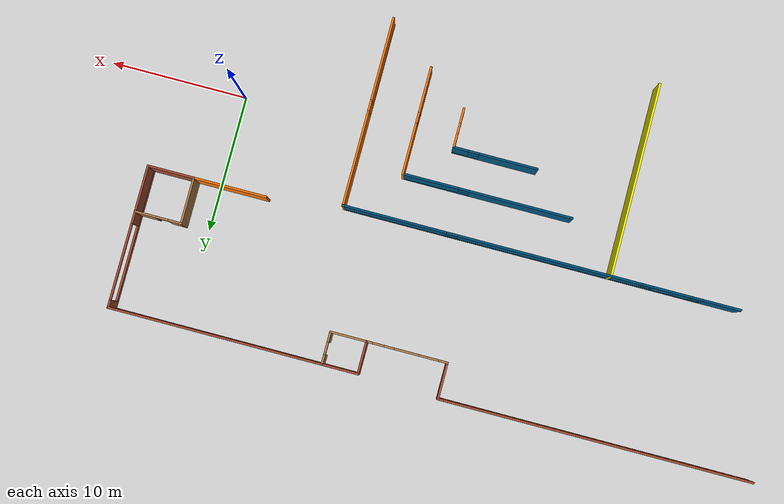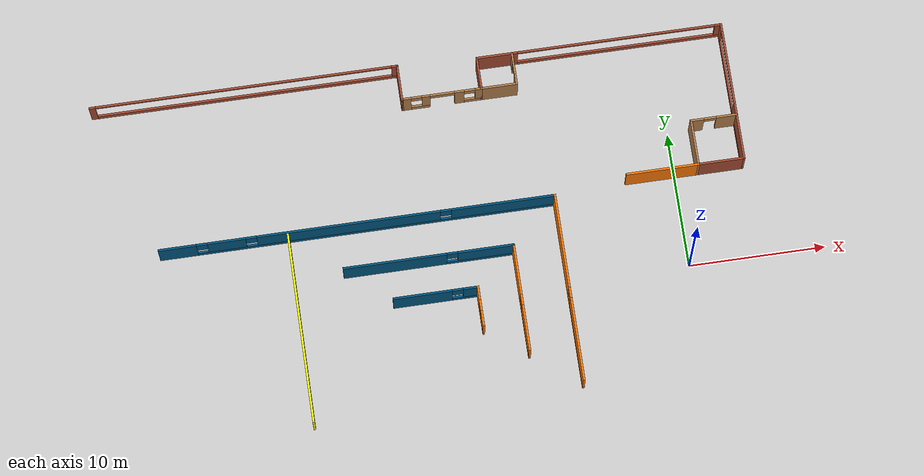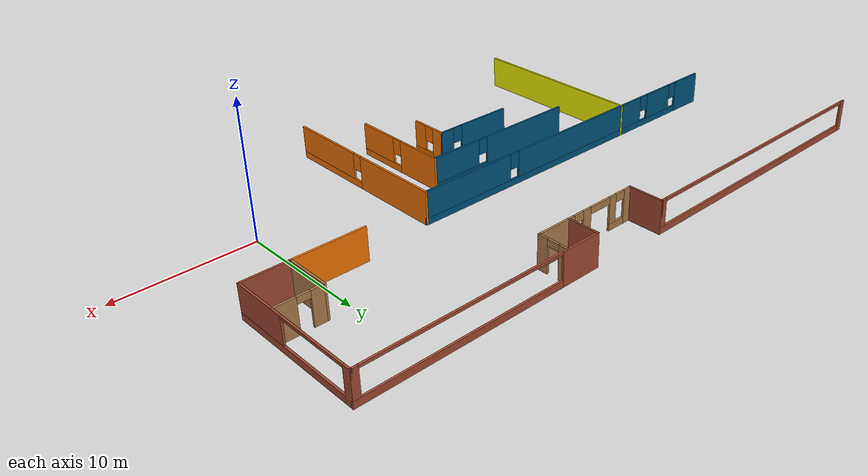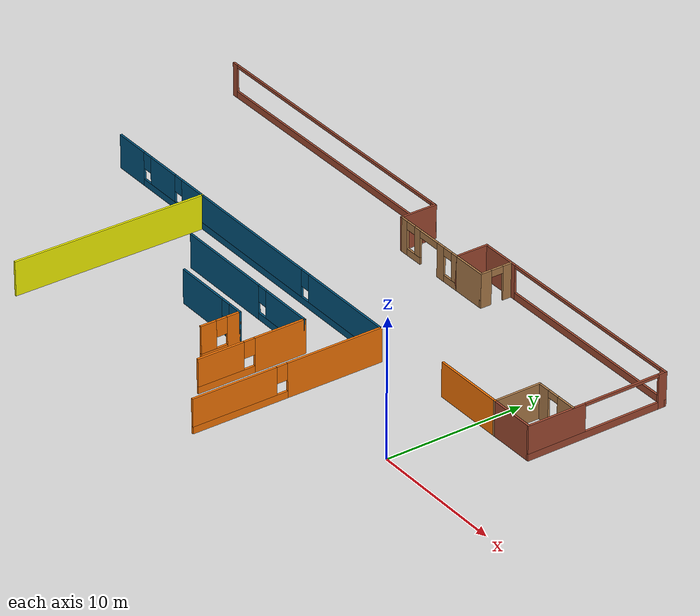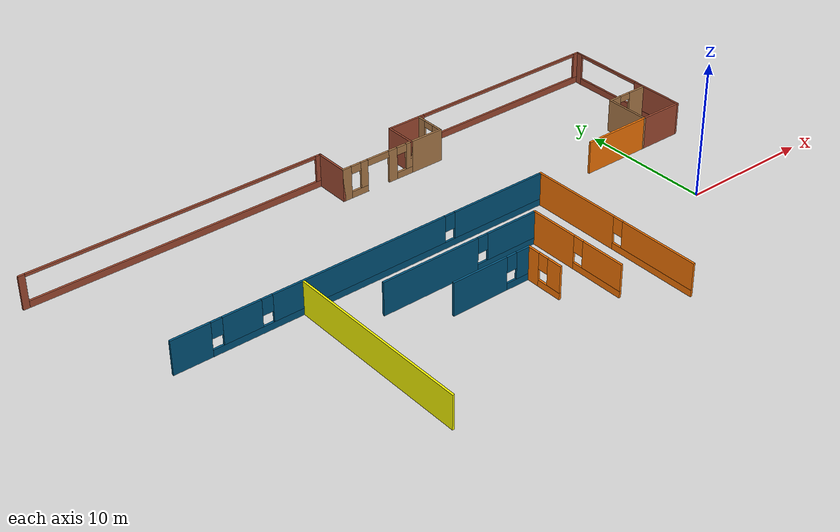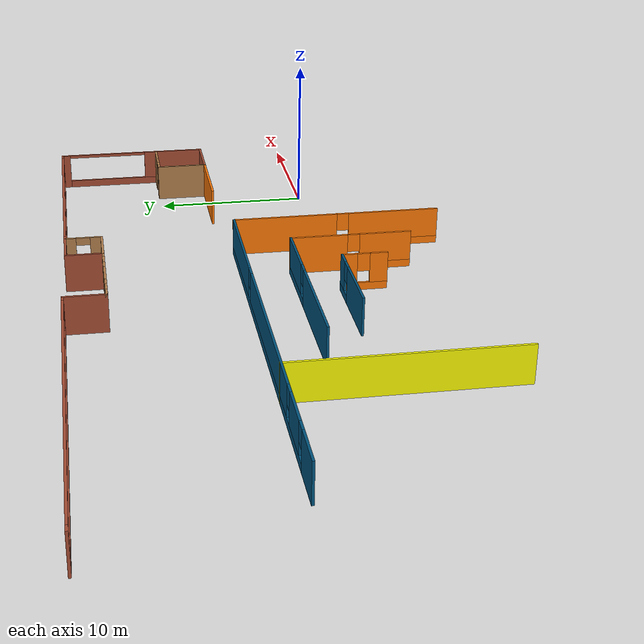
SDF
<sdf version="1.6">
 <model name="spiral_office">
  <pose>-21.9737 -0.990625 0 0 -0 0</pose>
  <link name="Wall_10">
   <pose>-8.28463 18.4006 0 0 -0 0</pose>
   <visual name="Wall_10_Visual_0">
    <pose>-11.142 0 1.25 0 -0 0</pose>
    <geometry><box><size>0.465955 0.15 2.5</size></box></geometry>
    <material>
     <script><uri>file://media/materials/scripts/gazebo.material</uri><name>Gazebo/Bricks</name></script>
     <ambient>1 1 1 1</ambient>
    </material>
    <meta><layer>0</layer></meta>
   </visual>
   <collision name="Wall_10_Collision_0">
    <geometry><box><size>0.465955 0.15 2.5</size></box></geometry>
    <pose>-11.142 0 1.25 0 -0 0</pose>
   </collision>
   <visual name="Wall_10_Visual_1">
    <pose>0.232978 0 0.25 0 -0 0</pose>
    <geometry><box><size>22.284 0.15 0.5</size></box></geometry>
    <material>
     <script><uri>file://media/materials/scripts/gazebo.material</uri><name>Gazebo/Bricks</name></script>
     <ambient>1 1 1 1</ambient>
    </material>
    <meta><layer>0</layer></meta>
   </visual>
   <collision name="Wall_10_Collision_1">
    <geometry><box><size>22.284 0.15 0.5</size></box></geometry>
    <pose>0.232978 0 0.25 0 -0 0</pose>
   </collision>
   <visual name="Wall_10_Visual_2">
    <pose>11.1279 0 1.5 0 -0 0</pose>
    <geometry><box><size>0.494199 0.15 2</size></box></geometry>
    <material>
     <script><uri>file://media/materials/scripts/gazebo.material</uri><name>Gazebo/Bricks</name></script>
     <ambient>1 1 1 1</ambient>
    </material>
    <meta><layer>0</layer></meta>
   </visual>
   <collision name="Wall_10_Collision_2">
    <geometry><box><size>0.494199 0.15 2</size></box></geometry>
    <pose>11.1279 0 1.5 0 -0 0</pose>
   </collision>
   <visual name="Wall_10_Visual_3">
    <pose>-0.014122 0 2.4 0 -0 0</pose>
    <geometry><box><size>21.7898 0.15 0.2</size></box></geometry>
    <material>
     <script><uri>file://media/materials/scripts/gazebo.material</uri><name>Gazebo/Bricks</name></script>
     <ambient>1 1 1 1</ambient>
    </material>
    <meta><layer>0</layer></meta>
   </visual>
   <collision name="Wall_10_Collision_3">
    <geometry><box><size>21.7898 0.15 0.2</size></box></geometry>
    <pose>-0.014122 0 2.4 0 -0 0</pose>
   </collision>
  </link>
  <link name="Wall_11">
   <collision name="Wall_11_Collision">
    <geometry><box><size>2.75 0.15 2.5</size></box></geometry>
    <pose>0 0 1.25 0 -0 0</pose>
   </collision>
   <visual name="Wall_11_Visual">
    <pose>0 0 1.25 0 -0 0</pose>
    <geometry><box><size>2.75 0.15 2.5</size></box></geometry>
    <material>
     <script><uri>file://media/materials/scripts/gazebo.material</uri><name>Gazebo/Bricks</name></script>
     <ambient>1 1 1 1</ambient>
    </material>
    <meta><layer>0</layer></meta>
   </visual>
   <pose>3.01537 17.1006 0 0 0 -1.5708</pose>
  </link>
  <link name="Wall_12">
   <pose>5.94037 15.8006 0 0 -0 0</pose>
   <visual name="Wall_12_Visual_0">
    <pose>-2.63334 0 1.25 0 -0 0</pose>
    <geometry><box><size>0.733327 0.15 2.5</size></box></geometry>
    <material>
     <script><uri>file://media/materials/scripts/gazebo.material</uri><name>Gazebo/Wood</name></script>
     <ambient>1 1 1 1</ambient>
    </material>
    <meta><layer>0</layer></meta>
   </visual>
   <collision name="Wall_12_Collision_0">
    <geometry><box><size>0.733327 0.15 2.5</size></box></geometry>
    <pose>-2.63334 0 1.25 0 -0 0</pose>
   </collision>
   <visual name="Wall_12_Visual_1">
    <pose>1.29307 0 1.25 0 -0 0</pose>
    <geometry><box><size>0.719491 0.15 2.5</size></box></geometry>
    <material>
     <script><uri>file://media/materials/scripts/gazebo.material</uri><name>Gazebo/Wood</name></script>
     <ambient>1 1 1 1</ambient>
    </material>
    <meta><layer>0</layer></meta>
   </visual>
   <collision name="Wall_12_Collision_1">
    <geometry><box><size>0.719491 0.15 2.5</size></box></geometry>
    <pose>1.29307 0 1.25 0 -0 0</pose>
   </collision>
   <visual name="Wall_12_Visual_2">
    <pose>-1.56667 0 0.25 0 -0 0</pose>
    <geometry><box><size>1.4 0.15 0.5</size></box></geometry>
    <material>
     <script><uri>file://media/materials/scripts/gazebo.material</uri><name>Gazebo/Wood</name></script>
     <ambient>1 1 1 1</ambient>
    </material>
    <meta><layer>0</layer></meta>
   </visual>
   <collision name="Wall_12_Collision_2">
    <geometry><box><size>1.4 0.15 0.5</size></box></geometry>
    <pose>-1.56667 0 0.25 0 -0 0</pose>
   </collision>
   <visual name="Wall_12_Visual_3">
    <pose>2.32641 0 0.25 0 -0 0</pose>
    <geometry><box><size>1.34718 0.15 0.5</size></box></geometry>
    <material>
     <script><uri>file://media/materials/scripts/gazebo.material</uri><name>Gazebo/Wood</name></script>
     <ambient>1 1 1 1</ambient>
    </material>
    <meta><layer>0</layer></meta>
   </visual>
   <collision name="Wall_12_Collision_3">
    <geometry><box><size>1.34718 0.15 0.5</size></box></geometry>
    <pose>2.32641 0 0.25 0 -0 0</pose>
   </collision>
   <visual name="Wall_12_Visual_4">
    <pose>-1.16667 0 1.5 0 -0 0</pose>
    <geometry><box><size>0.6 0.15 2</size></box></geometry>
    <material>
     <script><uri>file://media/materials/scripts/gazebo.material</uri><name>Gazebo/Wood</name></script>
     <ambient>1 1 1 1</ambient>
    </material>
    <meta><layer>0</layer></meta>
   </visual>
   <collision name="Wall_12_Collision_4">
    <geometry><box><size>0.6 0.15 2</size></box></geometry>
    <pose>-1.16667 0 1.5 0 -0 0</pose>
   </collision>
   <visual name="Wall_12_Visual_5">
    <pose>-1.16667 0 1.5 0 -0 0</pose>
    <geometry><box><size>0.6 0.15 2</size></box></geometry>
    <material>
     <script><uri>file://media/materials/scripts/gazebo.material</uri><name>Gazebo/Wood</name></script>
     <ambient>1 1 1 1</ambient>
    </material>
    <meta><layer>0</layer></meta>
   </visual>
   <collision name="Wall_12_Collision_5">
    <geometry><box><size>0.6 0.15 2</size></box></geometry>
    <pose>-1.16667 0 1.5 0 -0 0</pose>
   </collision>
   <visual name="Wall_12_Visual_6">
    <pose>2.72641 0 1.5 0 -0 0</pose>
    <geometry><box><size>0.547182 0.15 2</size></box></geometry>
    <material>
     <script><uri>file://media/materials/scripts/gazebo.material</uri><name>Gazebo/Wood</name></script>
     <ambient>1 1 1 1</ambient>
    </material>
    <meta><layer>0</layer></meta>
   </visual>
   <collision name="Wall_12_Collision_6">
    <geometry><box><size>0.547182 0.15 2</size></box></geometry>
    <pose>2.72641 0 1.5 0 -0 0</pose>
   </collision>
   <visual name="Wall_12_Visual_7">
    <pose>-1.86667 0 2.2 0 -0 0</pose>
    <geometry><box><size>0.8 0.15 0.6</size></box></geometry>
    <material>
     <script><uri>file://media/materials/scripts/gazebo.material</uri><name>Gazebo/Wood</name></script>
     <ambient>1 1 1 1</ambient>
    </material>
    <meta><layer>0</layer></meta>
   </visual>
   <collision name="Wall_12_Collision_7">
    <geometry><box><size>0.8 0.15 0.6</size></box></geometry>
    <pose>-1.86667 0 2.2 0 -0 0</pose>
   </collision>
   <visual name="Wall_12_Visual_8">
    <pose>2.05282 0 2.2 0 -0 0</pose>
    <geometry><box><size>0.8 0.15 0.6</size></box></geometry>
    <material>
     <script><uri>file://media/materials/scripts/gazebo.material</uri><name>Gazebo/Wood</name></script>
     <ambient>1 1 1 1</ambient>
    </material>
    <meta><layer>0</layer></meta>
   </visual>
   <collision name="Wall_12_Collision_8">
    <geometry><box><size>0.8 0.15 0.6</size></box></geometry>
    <pose>2.05282 0 2.2 0 -0 0</pose>
   </collision>
   <visual name="Wall_12_Visual_9">
    <pose>0.033327 0 2.25 0 -0 0</pose>
    <geometry><box><size>1.8 0.15 0.5</size></box></geometry>
    <material>
     <script><uri>file://media/materials/scripts/gazebo.material</uri><name>Gazebo/Wood</name></script>
     <ambient>1 1 1 1</ambient>
    </material>
    <meta><layer>0</layer></meta>
   </visual>
   <collision name="Wall_12_Collision_9">
    <geometry><box><size>1.8 0.15 0.5</size></box></geometry>
    <pose>0.033327 0 2.25 0 -0 0</pose>
   </collision>
   <visual name="Wall_12_Visual_10">
    <pose>0.033327 0 2.25 0 -0 0</pose>
    <geometry><box><size>1.8 0.15 0.5</size></box></geometry>
    <material>
     <script><uri>file://media/materials/scripts/gazebo.material</uri><name>Gazebo/Wood</name></script>
     <ambient>1 1 1 1</ambient>
    </material>
    <meta><layer>0</layer></meta>
   </visual>
   <collision name="Wall_12_Collision_10">
    <geometry><box><size>1.8 0.15 0.5</size></box></geometry>
    <pose>0.033327 0 2.25 0 -0 0</pose>
   </collision>
  </link>
  <link name="Wall_13">
   <collision name="Wall_13_Collision">
    <geometry><box><size>2.5 0.15 2.5</size></box></geometry>
    <pose>0 0 1.25 0 -0 0</pose>
   </collision>
   <visual name="Wall_13_Visual">
    <pose>0 0 1.25 0 -0 0</pose>
    <geometry><box><size>2.5 0.15 2.5</size></box></geometry>
    <material>
     <script><uri>file://media/materials/scripts/gazebo.material</uri><name>Gazebo/Bricks</name></script>
     <ambient>1 1 1 1</ambient>
    </material>
    <meta><layer>0</layer></meta>
   </visual>
   <pose>8.86537 16.9756 0 0 -0 1.5708</pose>
  </link>
  <link name="Wall_14">
   <pose>17.9154 18.1506 0 0 -0 0</pose>
   <visual name="Wall_14_Visual_0">
    <pose>-7.57768 0 1.25 0 -0 0</pose>
    <geometry><box><size>3.09465 0.15 2.5</size></box></geometry>
    <material>
     <script><uri>file://media/materials/scripts/gazebo.material</uri><name>Gazebo/Bricks</name></script>
     <ambient>1 1 1 1</ambient>
    </material>
    <meta><layer>0</layer></meta>
   </visual>
   <collision name="Wall_14_Collision_0">
    <geometry><box><size>3.09465 0.15 2.5</size></box></geometry>
    <pose>-7.57768 0 1.25 0 -0 0</pose>
   </collision>
   <visual name="Wall_14_Visual_1">
    <pose>1.54732 0 0.25 0 -0 0</pose>
    <geometry><box><size>15.1554 0.15 0.5</size></box></geometry>
    <material>
     <script><uri>file://media/materials/scripts/gazebo.material</uri><name>Gazebo/Bricks</name></script>
     <ambient>1 1 1 1</ambient>
    </material>
    <meta><layer>0</layer></meta>
   </visual>
   <collision name="Wall_14_Collision_1">
    <geometry><box><size>15.1554 0.15 0.5</size></box></geometry>
    <pose>1.54732 0 0.25 0 -0 0</pose>
   </collision>
   <visual name="Wall_14_Visual_2">
    <pose>8.85582 0 1.5 0 -0 0</pose>
    <geometry><box><size>0.538352 0.15 2</size></box></geometry>
    <material>
     <script><uri>file://media/materials/scripts/gazebo.material</uri><name>Gazebo/Bricks</name></script>
     <ambient>1 1 1 1</ambient>
    </material>
    <meta><layer>0</layer></meta>
   </visual>
   <collision name="Wall_14_Collision_2">
    <geometry><box><size>0.538352 0.15 2</size></box></geometry>
    <pose>8.85582 0 1.5 0 -0 0</pose>
   </collision>
   <visual name="Wall_14_Visual_3">
    <pose>1.27815 0 2.4 0 -0 0</pose>
    <geometry><box><size>14.617 0.15 0.2</size></box></geometry>
    <material>
     <script><uri>file://media/materials/scripts/gazebo.material</uri><name>Gazebo/Bricks</name></script>
     <ambient>1 1 1 1</ambient>
    </material>
    <meta><layer>0</layer></meta>
   </visual>
   <collision name="Wall_14_Collision_3">
    <geometry><box><size>14.617 0.15 0.2</size></box></geometry>
    <pose>1.27815 0 2.4 0 -0 0</pose>
   </collision>
  </link>
  <link name="Wall_15">
   <pose>26.9654 12.9756 0 0 0 -1.5708</pose>
   <visual name="Wall_15_Visual_0">
    <pose>-4.93489 0 1.25 0 -0 0</pose>
    <geometry><box><size>0.630216 0.15 2.5</size></box></geometry>
    <material>
     <script><uri>file://media/materials/scripts/gazebo.material</uri><name>Gazebo/Bricks</name></script>
     <ambient>1 1 1 1</ambient>
    </material>
    <meta><layer>0</layer></meta>
   </visual>
   <collision name="Wall_15_Collision_0">
    <geometry><box><size>0.630216 0.15 2.5</size></box></geometry>
    <pose>-4.93489 0 1.25 0 -0 0</pose>
   </collision>
   <visual name="Wall_15_Visual_1">
    <pose>0.315108 0 0.25 0 -0 0</pose>
    <geometry><box><size>9.86978 0.15 0.5</size></box></geometry>
    <material>
     <script><uri>file://media/materials/scripts/gazebo.material</uri><name>Gazebo/Bricks</name></script>
     <ambient>1 1 1 1</ambient>
    </material>
    <meta><layer>0</layer></meta>
   </visual>
   <collision name="Wall_15_Collision_1">
    <geometry><box><size>9.86978 0.15 0.5</size></box></geometry>
    <pose>0.315108 0 0.25 0 -0 0</pose>
   </collision>
   <visual name="Wall_15_Visual_2">
    <pose>3.09761 0 1.5 0 -0 0</pose>
    <geometry><box><size>4.30478 0.15 2</size></box></geometry>
    <material>
     <script><uri>file://media/materials/scripts/gazebo.material</uri><name>Gazebo/Bricks</name></script>
     <ambient>1 1 1 1</ambient>
    </material>
    <meta><layer>0</layer></meta>
   </visual>
   <collision name="Wall_15_Collision_2">
    <geometry><box><size>4.30478 0.15 2</size></box></geometry>
    <pose>3.09761 0 1.5 0 -0 0</pose>
   </collision>
   <visual name="Wall_15_Visual_3">
    <pose>-1.83728 0 2.4 0 -0 0</pose>
    <geometry><box><size>5.565 0.15 0.2</size></box></geometry>
    <material>
     <script><uri>file://media/materials/scripts/gazebo.material</uri><name>Gazebo/Bricks</name></script>
     <ambient>1 1 1 1</ambient>
    </material>
    <meta><layer>0</layer></meta>
   </visual>
   <collision name="Wall_15_Collision_3">
    <geometry><box><size>5.565 0.15 0.2</size></box></geometry>
    <pose>-1.83728 0 2.4 0 -0 0</pose>
   </collision>
  </link>
  <link name="Wall_16">
   <collision name="Wall_16_Collision">
    <geometry><box><size>3.50167 0.15 2.5</size></box></geometry>
    <pose>0 0 1.25 0 -0 0</pose>
   </collision>
   <visual name="Wall_16_Visual">
    <pose>0 0 1.25 0 -0 0</pose>
    <geometry><box><size>3.50167 0.15 2.5</size></box></geometry>
    <material>
     <script><uri>file://media/materials/scripts/gazebo.material</uri><name>Gazebo/Bricks</name></script>
     <ambient>1 1 1 1</ambient>
    </material>
    <meta><layer>0</layer></meta>
   </visual>
   <pose>25.2895 7.80063 0 0 0 -3.14159</pose>
  </link>
  <link name="Wall_30">
   <collision name="Wall_30_Collision">
    <geometry><box><size>2.75 0.15 2.5</size></box></geometry>
    <pose>0 0 1.25 0 -0 0</pose>
   </collision>
   <visual name="Wall_30_Visual">
    <pose>0 0 1.25 0 -0 0</pose>
    <geometry><box><size>2.75 0.15 2.5</size></box></geometry>
    <material>
     <script><uri>file://media/materials/scripts/gazebo.material</uri><name>Gazebo/Wood</name></script>
     <ambient>1 1 1 1</ambient>
    </material>
    <meta><layer>0</layer></meta>
   </visual>
   <pose>10.1655 15.8006 0 0 0 -5e-06</pose>
  </link>
  <link name="Wall_31">
   <pose>11.4657 16.9456 0 0 -0 1.5708</pose>
   <visual name="Wall_31_Visual_0">
    <pose>-0.808945 0 1.25 0 -0 0</pose>
    <geometry><box><size>0.822111 0.15 2.5</size></box></geometry>
    <material>
     <script><uri>file://media/materials/scripts/gazebo.material</uri><name>Gazebo/Wood</name></script>
     <ambient>1 1 1 1</ambient>
    </material>
    <meta><layer>0</layer></meta>
   </visual>
   <collision name="Wall_31_Collision_0">
    <geometry><box><size>0.822111 0.15 2.5</size></box></geometry>
    <pose>-0.808945 0 1.25 0 -0 0</pose>
   </collision>
   <visual name="Wall_31_Visual_1">
    <pose>0.861055 0 1.25 0 -0 0</pose>
    <geometry><box><size>0.717889 0.15 2.5</size></box></geometry>
    <material>
     <script><uri>file://media/materials/scripts/gazebo.material</uri><name>Gazebo/Wood</name></script>
     <ambient>1 1 1 1</ambient>
    </material>
    <meta><layer>0</layer></meta>
   </visual>
   <collision name="Wall_31_Collision_1">
    <geometry><box><size>0.717889 0.15 2.5</size></box></geometry>
    <pose>0.861055 0 1.25 0 -0 0</pose>
   </collision>
   <visual name="Wall_31_Visual_2">
    <pose>0.052111 0 2.25 0 -0 0</pose>
    <geometry><box><size>0.9 0.15 0.5</size></box></geometry>
    <material>
     <script><uri>file://media/materials/scripts/gazebo.material</uri><name>Gazebo/Wood</name></script>
     <ambient>1 1 1 1</ambient>
    </material>
    <meta><layer>0</layer></meta>
   </visual>
   <collision name="Wall_31_Collision_2">
    <geometry><box><size>0.9 0.15 0.5</size></box></geometry>
    <pose>0.052111 0 2.25 0 -0 0</pose>
   </collision>
  </link>
  <link name="Wall_33">
   <collision name="Wall_33_Collision">
    <geometry><box><size>3.50059 0.15 2.5</size></box></geometry>
    <pose>0 0 1.25 0 -0 0</pose>
   </collision>
   <visual name="Wall_33_Visual">
    <pose>0 0 1.25 0 -0 0</pose>
    <geometry><box><size>3.50059 0.15 2.5</size></box></geometry>
    <material>
     <script><uri>file://media/materials/scripts/gazebo.material</uri><name>Gazebo/Wood</name></script>
     <ambient>1 1 1 1</ambient>
    </material>
    <meta><layer>0</layer></meta>
   </visual>
   <pose>23.6137 9.47563 0 0 -0 1.5708</pose>
  </link>
  <link name="Wall_34">
   <pose>25.2687 11.1506 0 0 -0 0</pose>
   <visual name="Wall_34_Visual_0">
    <pose>-1.21905 0 1.25 0 -0 0</pose>
    <geometry><box><size>1.02189 0.15 2.5</size></box></geometry>
    <material>
     <script><uri>file://media/materials/scripts/gazebo.material</uri><name>Gazebo/Wood</name></script>
     <ambient>1 1 1 1</ambient>
    </material>
    <meta><layer>0</layer></meta>
   </visual>
   <collision name="Wall_34_Collision_0">
    <geometry><box><size>1.02189 0.15 2.5</size></box></geometry>
    <pose>-1.21905 0 1.25 0 -0 0</pose>
   </collision>
   <visual name="Wall_34_Visual_1">
    <pose>0.960945 0 1.25 0 -0 0</pose>
    <geometry><box><size>1.53811 0.15 2.5</size></box></geometry>
    <material>
     <script><uri>file://media/materials/scripts/gazebo.material</uri><name>Gazebo/Wood</name></script>
     <ambient>1 1 1 1</ambient>
    </material>
    <meta><layer>0</layer></meta>
   </visual>
   <collision name="Wall_34_Collision_1">
    <geometry><box><size>1.53811 0.15 2.5</size></box></geometry>
    <pose>0.960945 0 1.25 0 -0 0</pose>
   </collision>
   <visual name="Wall_34_Visual_2">
    <pose>-0.25811 0 2.25 0 -0 0</pose>
    <geometry><box><size>0.9 0.15 0.5</size></box></geometry>
    <material>
     <script><uri>file://media/materials/scripts/gazebo.material</uri><name>Gazebo/Wood</name></script>
     <ambient>1 1 1 1</ambient>
    </material>
    <meta><layer>0</layer></meta>
   </visual>
   <collision name="Wall_34_Collision_2">
    <geometry><box><size>0.9 0.15 0.5</size></box></geometry>
    <pose>-0.25811 0 2.25 0 -0 0</pose>
   </collision>
  </link>
  <link name="Wall_36">
   <collision name="Wall_36_Collision">
    <geometry><box><size>14.25 0.15 2.5</size></box></geometry>
    <pose>0 0 1.25 0 -0 0</pose>
   </collision>
   <visual name="Wall_36_Visual">
    <pose>0 0 1.25 0 -0 0</pose>
    <geometry><box><size>14.25 0.15 2.5</size></box></geometry>
    <material>
     <script><uri>file://media/materials/scripts/gazebo.material</uri><name>Gazebo/Grey</name></script>
     <ambient>1 1 0 1</ambient>
    </material>
    <meta><layer>0</layer></meta>
   </visual>
   <pose>-6.55416 -0.061107 0 0 0 -1.5708</pose>
  </link>
  <link name="Wall_39">
   <pose>-1.47916 6.98889 0 0 -0 0</pose>
   <visual name="Wall_39_Visual_0">
    <pose>-13.1098 0 1.25 0 -0 0</pose>
    <geometry><box><size>2.78039 0.15 2.5</size></box></geometry>
    <material>
     <script><uri>file://media/materials/scripts/gazebo.material</uri><name>Gazebo/Grey</name></script>
     <ambient>0 0.333333 0.498039 1</ambient>
    </material>
    <meta><layer>0</layer></meta>
   </visual>
   <collision name="Wall_39_Collision_0">
    <geometry><box><size>2.78039 0.15 2.5</size></box></geometry>
    <pose>-13.1098 0 1.25 0 -0 0</pose>
   </collision>
   <visual name="Wall_39_Visual_1">
    <pose>1.39019 0 0.25 0 -0 0</pose>
    <geometry><box><size>26.2196 0.15 0.5</size></box></geometry>
    <material>
     <script><uri>file://media/materials/scripts/gazebo.material</uri><name>Gazebo/Grey</name></script>
     <ambient>0 0.333333 0.498039 1</ambient>
    </material>
    <meta><layer>0</layer></meta>
   </visual>
   <collision name="Wall_39_Collision_1">
    <geometry><box><size>26.2196 0.15 0.5</size></box></geometry>
    <pose>1.39019 0 0.25 0 -0 0</pose>
   </collision>
   <visual name="Wall_39_Visual_2">
    <pose>-9.52728 0 1.5 0 -0 0</pose>
    <geometry><box><size>2.78467 0.15 2</size></box></geometry>
    <material>
     <script><uri>file://media/materials/scripts/gazebo.material</uri><name>Gazebo/Grey</name></script>
     <ambient>0 0.333333 0.498039 1</ambient>
    </material>
    <meta><layer>0</layer></meta>
   </visual>
   <collision name="Wall_39_Collision_2">
    <geometry><box><size>2.78467 0.15 2</size></box></geometry>
    <pose>-9.52728 0 1.5 0 -0 0</pose>
   </collision>
   <visual name="Wall_39_Visual_3">
    <pose>-0.641047 0 1.5 0 -0 0</pose>
    <geometry><box><size>13.3878 0.15 2</size></box></geometry>
    <material>
     <script><uri>file://media/materials/scripts/gazebo.material</uri><name>Gazebo/Grey</name></script>
     <ambient>0 0.333333 0.498039 1</ambient>
    </material>
    <meta><layer>0</layer></meta>
   </visual>
   <collision name="Wall_39_Collision_3">
    <geometry><box><size>13.3878 0.15 2</size></box></geometry>
    <pose>-0.641047 0 1.5 0 -0 0</pose>
   </collision>
   <visual name="Wall_39_Visual_4">
    <pose>10.6764 0 1.5 0 -0 0</pose>
    <geometry><box><size>7.64715 0.15 2</size></box></geometry>
    <material>
     <script><uri>file://media/materials/scripts/gazebo.material</uri><name>Gazebo/Grey</name></script>
     <ambient>0 0.333333 0.498039 1</ambient>
    </material>
    <meta><layer>0</layer></meta>
   </visual>
   <collision name="Wall_39_Collision_4">
    <geometry><box><size>7.64715 0.15 2</size></box></geometry>
    <pose>10.6764 0 1.5 0 -0 0</pose>
   </collision>
   <visual name="Wall_39_Visual_5">
    <pose>-11.3196 0 1.9 0 -0 0</pose>
    <geometry><box><size>0.8 0.15 1.2</size></box></geometry>
    <material>
     <script><uri>file://media/materials/scripts/gazebo.material</uri><name>Gazebo/Grey</name></script>
     <ambient>0 0.333333 0.498039 1</ambient>
    </material>
    <meta><layer>0</layer></meta>
   </visual>
   <collision name="Wall_39_Collision_5">
    <geometry><box><size>0.8 0.15 1.2</size></box></geometry>
    <pose>-11.3196 0 1.9 0 -0 0</pose>
   </collision>
   <visual name="Wall_39_Visual_6">
    <pose>-7.73495 0 1.9 0 -0 0</pose>
    <geometry><box><size>0.8 0.15 1.2</size></box></geometry>
    <material>
     <script><uri>file://media/materials/scripts/gazebo.material</uri><name>Gazebo/Grey</name></script>
     <ambient>0 0.333333 0.498039 1</ambient>
    </material>
    <meta><layer>0</layer></meta>
   </visual>
   <collision name="Wall_39_Collision_6">
    <geometry><box><size>0.8 0.15 1.2</size></box></geometry>
    <pose>-7.73495 0 1.9 0 -0 0</pose>
   </collision>
   <visual name="Wall_39_Visual_7">
    <pose>6.45285 0 1.9 0 -0 0</pose>
    <geometry><box><size>0.8 0.15 1.2</size></box></geometry>
    <material>
     <script><uri>file://media/materials/scripts/gazebo.material</uri><name>Gazebo/Grey</name></script>
     <ambient>0 0.333333 0.498039 1</ambient>
    </material>
    <meta><layer>0</layer></meta>
   </visual>
   <collision name="Wall_39_Collision_7">
    <geometry><box><size>0.8 0.15 1.2</size></box></geometry>
    <pose>6.45285 0 1.9 0 -0 0</pose>
   </collision>
  </link>
  <link name="Wall_40">
   <pose>12.9458 0.063893 0 0 0 -1.5708</pose>
   <visual name="Wall_40_Visual_0">
    <pose>-3.47437 0 1.25 0 -0 0</pose>
    <geometry><box><size>7.05127 0.15 2.5</size></box></geometry>
    <material>
     <script><uri>file://media/materials/scripts/gazebo.material</uri><name>Gazebo/Grey</name></script>
     <ambient>0.996078 0.47451 0.0196078 1</ambient>
    </material>
    <meta><layer>0</layer></meta>
   </visual>
   <collision name="Wall_40_Collision_0">
    <geometry><box><size>7.05127 0.15 2.5</size></box></geometry>
    <pose>-3.47437 0 1.25 0 -0 0</pose>
   </collision>
   <visual name="Wall_40_Visual_1">
    <pose>3.52563 0 0.25 0 -0 0</pose>
    <geometry><box><size>6.94873 0.15 0.5</size></box></geometry>
    <material>
     <script><uri>file://media/materials/scripts/gazebo.material</uri><name>Gazebo/Grey</name></script>
     <ambient>0.996078 0.47451 0.0196078 1</ambient>
    </material>
    <meta><layer>0</layer></meta>
   </visual>
   <collision name="Wall_40_Collision_1">
    <geometry><box><size>6.94873 0.15 0.5</size></box></geometry>
    <pose>3.52563 0 0.25 0 -0 0</pose>
   </collision>
   <visual name="Wall_40_Visual_2">
    <pose>3.92563 0 1.5 0 -0 0</pose>
    <geometry><box><size>6.14873 0.15 2</size></box></geometry>
    <material>
     <script><uri>file://media/materials/scripts/gazebo.material</uri><name>Gazebo/Grey</name></script>
     <ambient>0.996078 0.47451 0.0196078 1</ambient>
    </material>
    <meta><layer>0</layer></meta>
   </visual>
   <collision name="Wall_40_Collision_2">
    <geometry><box><size>6.14873 0.15 2</size></box></geometry>
    <pose>3.92563 0 1.5 0 -0 0</pose>
   </collision>
   <visual name="Wall_40_Visual_3">
    <pose>0.451267 0 1.9 0 -0 0</pose>
    <geometry><box><size>0.8 0.15 1.2</size></box></geometry>
    <material>
     <script><uri>file://media/materials/scripts/gazebo.material</uri><name>Gazebo/Grey</name></script>
     <ambient>0.996078 0.47451 0.0196078 1</ambient>
    </material>
    <meta><layer>0</layer></meta>
   </visual>
   <collision name="Wall_40_Collision_3">
    <geometry><box><size>0.8 0.15 1.2</size></box></geometry>
    <pose>0.451267 0 1.9 0 -0 0</pose>
   </collision>
  </link>
  <link name="Wall_43">
   <pose>3.27084 3.73889 0 0 -0 0</pose>
   <visual name="Wall_43_Visual_0">
    <pose>-2.47357 0 1.25 0 -0 0</pose>
    <geometry><box><size>7.55285 0.15 2.5</size></box></geometry>
    <material>
     <script><uri>file://media/materials/scripts/gazebo.material</uri><name>Gazebo/Grey</name></script>
     <ambient>0 0.333333 0.498039 1</ambient>
    </material>
    <meta><layer>0</layer></meta>
   </visual>
   <collision name="Wall_43_Collision_0">
    <geometry><box><size>7.55285 0.15 2.5</size></box></geometry>
    <pose>-2.47357 0 1.25 0 -0 0</pose>
   </collision>
   <visual name="Wall_43_Visual_1">
    <pose>3.77643 0 0.25 0 -0 0</pose>
    <geometry><box><size>4.94715 0.15 0.5</size></box></geometry>
    <material>
     <script><uri>file://media/materials/scripts/gazebo.material</uri><name>Gazebo/Grey</name></script>
     <ambient>0 0.333333 0.498039 1</ambient>
    </material>
    <meta><layer>0</layer></meta>
   </visual>
   <collision name="Wall_43_Collision_1">
    <geometry><box><size>4.94715 0.15 0.5</size></box></geometry>
    <pose>3.77643 0 0.25 0 -0 0</pose>
   </collision>
   <visual name="Wall_43_Visual_2">
    <pose>4.17643 0 1.5 0 -0 0</pose>
    <geometry><box><size>4.14715 0.15 2</size></box></geometry>
    <material>
     <script><uri>file://media/materials/scripts/gazebo.material</uri><name>Gazebo/Grey</name></script>
     <ambient>0 0.333333 0.498039 1</ambient>
    </material>
    <meta><layer>0</layer></meta>
   </visual>
   <collision name="Wall_43_Collision_2">
    <geometry><box><size>4.14715 0.15 2</size></box></geometry>
    <pose>4.17643 0 1.5 0 -0 0</pose>
   </collision>
   <visual name="Wall_43_Visual_3">
    <pose>1.70285 0 1.9 0 -0 0</pose>
    <geometry><box><size>0.8 0.15 1.2</size></box></geometry>
    <material>
     <script><uri>file://media/materials/scripts/gazebo.material</uri><name>Gazebo/Grey</name></script>
     <ambient>0 0.333333 0.498039 1</ambient>
    </material>
    <meta><layer>0</layer></meta>
   </visual>
   <collision name="Wall_43_Collision_3">
    <geometry><box><size>0.8 0.15 1.2</size></box></geometry>
    <pose>1.70285 0 1.9 0 -0 0</pose>
   </collision>
  </link>
  <link name="Wall_44">
   <pose>9.44584 -0.186107 0 0 0 -1.5708</pose>
   <visual name="Wall_44_Visual_0">
    <pose>-2.09937 0 1.25 0 -0 0</pose>
    <geometry><box><size>3.80127 0.15 2.5</size></box></geometry>
    <material>
     <script><uri>file://media/materials/scripts/gazebo.material</uri><name>Gazebo/Grey</name></script>
     <ambient>0.996078 0.47451 0.0196078 1</ambient>
    </material>
    <meta><layer>0</layer></meta>
   </visual>
   <collision name="Wall_44_Collision_0">
    <geometry><box><size>3.80127 0.15 2.5</size></box></geometry>
    <pose>-2.09937 0 1.25 0 -0 0</pose>
   </collision>
   <visual name="Wall_44_Visual_1">
    <pose>1.90063 0 0.25 0 -0 0</pose>
    <geometry><box><size>4.19873 0.15 0.5</size></box></geometry>
    <material>
     <script><uri>file://media/materials/scripts/gazebo.material</uri><name>Gazebo/Grey</name></script>
     <ambient>0.996078 0.47451 0.0196078 1</ambient>
    </material>
    <meta><layer>0</layer></meta>
   </visual>
   <collision name="Wall_44_Collision_1">
    <geometry><box><size>4.19873 0.15 0.5</size></box></geometry>
    <pose>1.90063 0 0.25 0 -0 0</pose>
   </collision>
   <visual name="Wall_44_Visual_2">
    <pose>2.30063 0 1.5 0 -0 0</pose>
    <geometry><box><size>3.39873 0.15 2</size></box></geometry>
    <material>
     <script><uri>file://media/materials/scripts/gazebo.material</uri><name>Gazebo/Grey</name></script>
     <ambient>0.996078 0.47451 0.0196078 1</ambient>
    </material>
    <meta><layer>0</layer></meta>
   </visual>
   <collision name="Wall_44_Collision_2">
    <geometry><box><size>3.39873 0.15 2</size></box></geometry>
    <pose>2.30063 0 1.5 0 -0 0</pose>
   </collision>
   <visual name="Wall_44_Visual_3">
    <pose>0.201267 0 1.9 0 -0 0</pose>
    <geometry><box><size>0.8 0.15 1.2</size></box></geometry>
    <material>
     <script><uri>file://media/materials/scripts/gazebo.material</uri><name>Gazebo/Grey</name></script>
     <ambient>0.996078 0.47451 0.0196078 1</ambient>
    </material>
    <meta><layer>0</layer></meta>
   </visual>
   <collision name="Wall_44_Collision_3">
    <geometry><box><size>0.8 0.15 1.2</size></box></geometry>
    <pose>0.201267 0 1.9 0 -0 0</pose>
   </collision>
  </link>
  <link name="Wall_47">
   <pose>3.39584 0.988893 0 0 -0 0</pose>
   <visual name="Wall_47_Visual_0">
    <pose>-0.973573 0 1.25 0 -0 0</pose>
    <geometry><box><size>4.30285 0.15 2.5</size></box></geometry>
    <material>
     <script><uri>file://media/materials/scripts/gazebo.material</uri><name>Gazebo/Grey</name></script>
     <ambient>0 0.333333 0.498039 1</ambient>
    </material>
    <meta><layer>0</layer></meta>
   </visual>
   <collision name="Wall_47_Collision_0">
    <geometry><box><size>4.30285 0.15 2.5</size></box></geometry>
    <pose>-0.973573 0 1.25 0 -0 0</pose>
   </collision>
   <visual name="Wall_47_Visual_1">
    <pose>2.15143 0 0.25 0 -0 0</pose>
    <geometry><box><size>1.94715 0.15 0.5</size></box></geometry>
    <material>
     <script><uri>file://media/materials/scripts/gazebo.material</uri><name>Gazebo/Grey</name></script>
     <ambient>0 0.333333 0.498039 1</ambient>
    </material>
    <meta><layer>0</layer></meta>
   </visual>
   <collision name="Wall_47_Collision_1">
    <geometry><box><size>1.94715 0.15 0.5</size></box></geometry>
    <pose>2.15143 0 0.25 0 -0 0</pose>
   </collision>
   <visual name="Wall_47_Visual_2">
    <pose>2.55143 0 1.5 0 -0 0</pose>
    <geometry><box><size>1.14715 0.15 2</size></box></geometry>
    <material>
     <script><uri>file://media/materials/scripts/gazebo.material</uri><name>Gazebo/Grey</name></script>
     <ambient>0 0.333333 0.498039 1</ambient>
    </material>
    <meta><layer>0</layer></meta>
   </visual>
   <collision name="Wall_47_Collision_2">
    <geometry><box><size>1.14715 0.15 2</size></box></geometry>
    <pose>2.55143 0 1.5 0 -0 0</pose>
   </collision>
   <visual name="Wall_47_Visual_3">
    <pose>1.57785 0 1.9 0 -0 0</pose>
    <geometry><box><size>0.8 0.15 1.2</size></box></geometry>
    <material>
     <script><uri>file://media/materials/scripts/gazebo.material</uri><name>Gazebo/Grey</name></script>
     <ambient>0 0.333333 0.498039 1</ambient>
    </material>
    <meta><layer>0</layer></meta>
   </visual>
   <collision name="Wall_47_Collision_3">
    <geometry><box><size>0.8 0.15 1.2</size></box></geometry>
    <pose>1.57785 0 1.9 0 -0 0</pose>
   </collision>
  </link>
  <link name="Wall_48">
   <pose>6.44584 -0.436107 0 0 0 -1.5708</pose>
   <visual name="Wall_48_Visual_0">
    <pose>-0.974203 0 1.25 0 -0 0</pose>
    <geometry><box><size>1.05159 0.15 2.5</size></box></geometry>
    <material>
     <script><uri>file://media/materials/scripts/gazebo.material</uri><name>Gazebo/Grey</name></script>
     <ambient>0.996078 0.47451 0.0196078 1</ambient>
    </material>
    <meta><layer>0</layer></meta>
   </visual>
   <collision name="Wall_48_Collision_0">
    <geometry><box><size>1.05159 0.15 2.5</size></box></geometry>
    <pose>-0.974203 0 1.25 0 -0 0</pose>
   </collision>
   <visual name="Wall_48_Visual_1">
    <pose>0.525797 0 0.25 0 -0 0</pose>
    <geometry><box><size>1.94841 0.15 0.5</size></box></geometry>
    <material>
     <script><uri>file://media/materials/scripts/gazebo.material</uri><name>Gazebo/Grey</name></script>
     <ambient>0.996078 0.47451 0.0196078 1</ambient>
    </material>
    <meta><layer>0</layer></meta>
   </visual>
   <collision name="Wall_48_Collision_1">
    <geometry><box><size>1.94841 0.15 0.5</size></box></geometry>
    <pose>0.525797 0 0.25 0 -0 0</pose>
   </collision>
   <visual name="Wall_48_Visual_2">
    <pose>0.925797 0 1.5 0 -0 0</pose>
    <geometry><box><size>1.14841 0.15 2</size></box></geometry>
    <material>
     <script><uri>file://media/materials/scripts/gazebo.material</uri><name>Gazebo/Grey</name></script>
     <ambient>0.996078 0.47451 0.0196078 1</ambient>
    </material>
    <meta><layer>0</layer></meta>
   </visual>
   <collision name="Wall_48_Collision_2">
    <geometry><box><size>1.14841 0.15 2</size></box></geometry>
    <pose>0.925797 0 1.5 0 -0 0</pose>
   </collision>
   <visual name="Wall_48_Visual_3">
    <pose>-0.048406 0 1.9 0 -0 0</pose>
    <geometry><box><size>0.8 0.15 1.2</size></box></geometry>
    <material>
     <script><uri>file://media/materials/scripts/gazebo.material</uri><name>Gazebo/Grey</name></script>
     <ambient>0.996078 0.47451 0.0196078 1</ambient>
    </material>
    <meta><layer>0</layer></meta>
   </visual>
   <collision name="Wall_48_Collision_3">
    <geometry><box><size>0.8 0.15 1.2</size></box></geometry>
    <pose>-0.048406 0 1.9 0 -0 0</pose>
   </collision>
  </link>
  <link name="Wall_97">
   <collision name="Wall_97_Collision">
    <geometry><box><size>5.399 0.15 2.5</size></box></geometry>
    <pose>0 0 1.25 0 -0 0</pose>
   </collision>
   <visual name="Wall_97_Visual">
    <pose>0 0 1.25 0 -0 0</pose>
    <geometry><box><size>5.399 0.15 2.5</size></box></geometry>
    <material>
     <script><uri>file://media/materials/scripts/gazebo.material</uri><name>Gazebo/Grey</name></script>
     <ambient>0.996078 0.47451 0.0196078 1</ambient>
    </material>
    <meta><layer>0</layer></meta>
   </visual>
   <pose>20.9892 7.80063 0 0 -0 3.14159</pose>
  </link>
  <static>1</static>
 </model>
</sdf>
